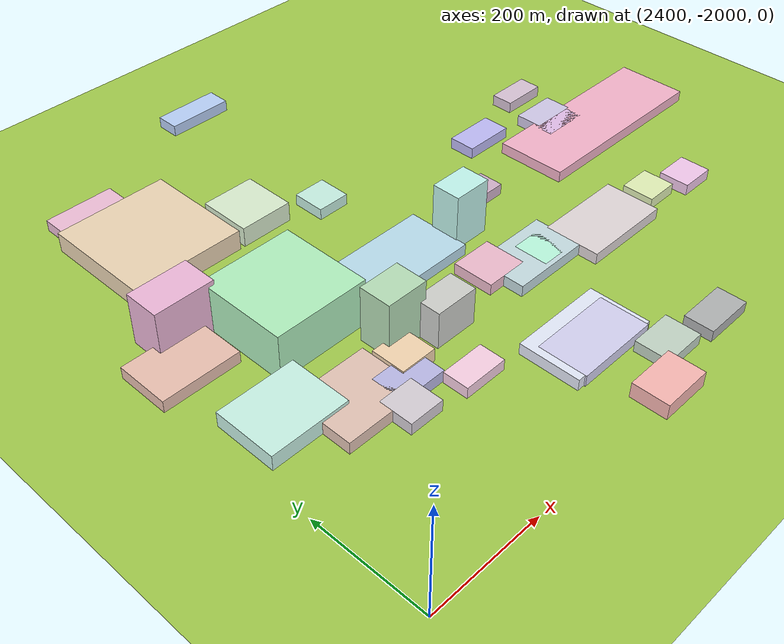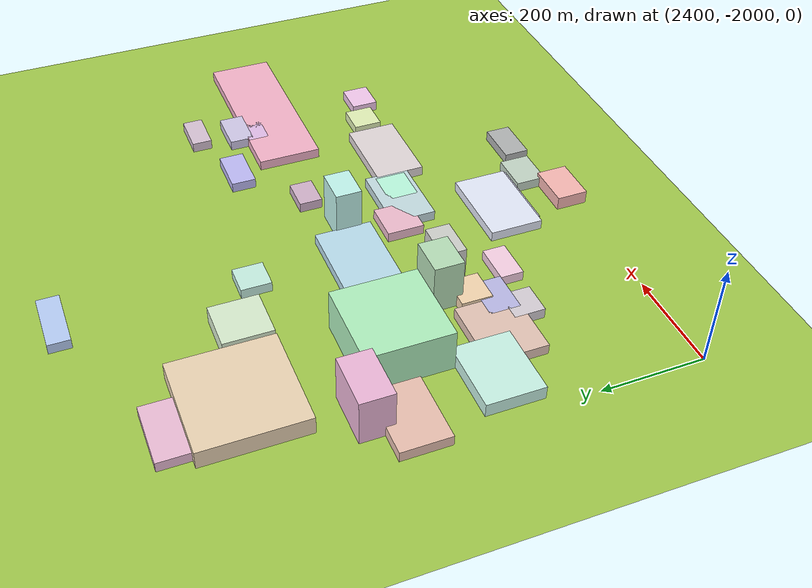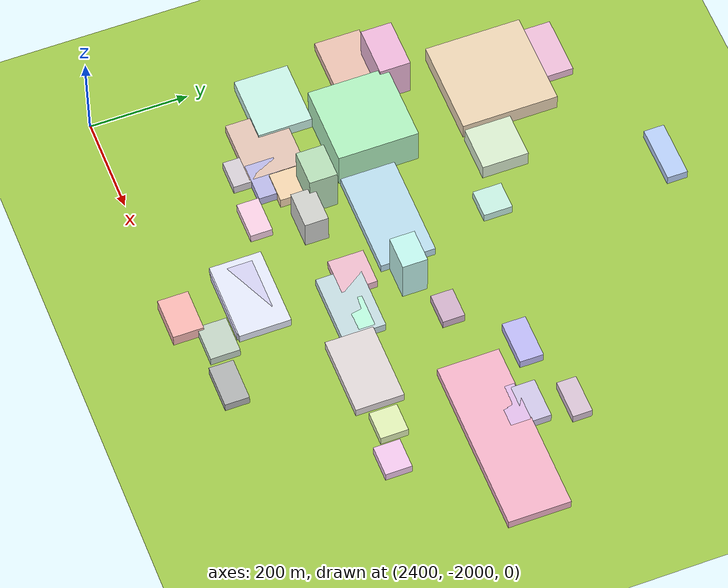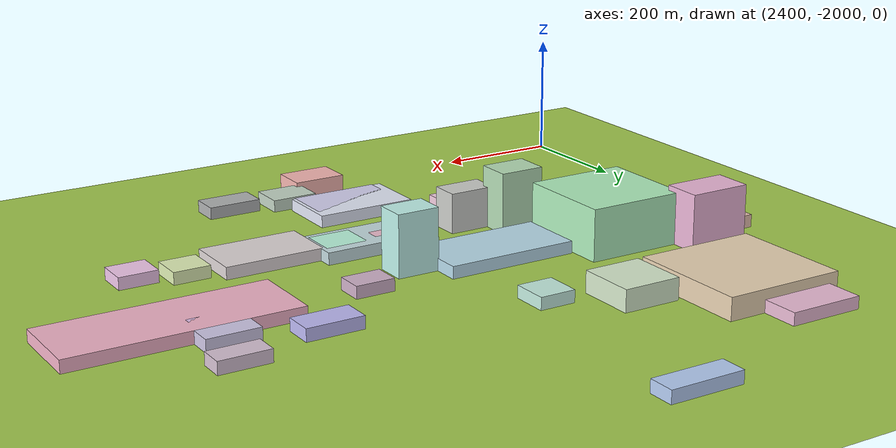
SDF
<sdf version="1.9">
 <world name="city_map">
  <model name="ground_plane">
   <static>1</static>
   <link name="link">
    <collision name="collision">
     <geometry><plane><normal>0 0 1</normal><size>11000 11000</size></plane></geometry>
    </collision>
    <visual name="visual">
     <geometry><plane><normal>0 0 1</normal><size>11000 11000</size></plane></geometry>
     <material>
      <ambient>0.551 0.712 0.210 1</ambient>
      <diffuse>0.651 0.812 0.310 1</diffuse>
      <specular>0.1 0.1 0.05 1</specular>
     </material>
    </visual>
   </link>
  </model>
  <model name="building_217675906">
   <static>1</static>
   <pose>3355.7046778592357 -1519.3740185500885 10.0 0 0 0</pose>
   <link name="link">
    <collision name="collision">
     <geometry><box><size>358.59774737228724 125.19690000002015 20</size></box></geometry>
    </collision>
    <visual name="visual">
     <cast_shadows>false</cast_shadows>
     <geometry><box><size>358.59774737228724 125.19690000002015 20</size></box></geometry>
     <material>
      <ambient>0.875 0.621 0.707 1</ambient>
      <diffuse>0.975 0.721 0.807 1</diffuse>
      <specular>0.292 0.216 0.242 1</specular>
      <emissive>0.01 0.01 0.01 1</emissive>
     </material>
    </visual>
   </link>
  </model>
  <model name="building_257993249">
   <static>1</static>
   <pose>2585.8370787539934 -1235.2685367506228 18.0 0 0 0</pose>
   <link name="link">
    <collision name="collision">
     <geometry><box><size>199.75691850875617 197.55780000014767 36.0</size></box></geometry>
    </collision>
    <visual name="visual">
     <cast_shadows>false</cast_shadows>
     <geometry><box><size>199.75691850875617 197.55780000014767 36.0</size></box></geometry>
     <material>
      <ambient>0.842 0.753 0.623 1</ambient>
      <diffuse>0.942 0.853 0.723 1</diffuse>
      <specular>0.283 0.256 0.217 1</specular>
      <emissive>0.01 0.01 0.01 1</emissive>
     </material>
    </visual>
   </link>
  </model>
  <model name="building_904435103">
   <static>1</static>
   <pose>2617.380323141981 -1515.2438643588926 42.0 0 0 0</pose>
   <link name="link">
    <collision name="collision">
     <geometry><box><size>167.0354452371219 164.70179999949863 84.0</size></box></geometry>
    </collision>
    <visual name="visual">
     <cast_shadows>false</cast_shadows>
     <geometry><box><size>167.0354452371219 164.70179999949863 84.0</size></box></geometry>
     <material>
      <ambient>0.607 0.861 0.663 1</ambient>
      <diffuse>0.707 0.961 0.763 1</diffuse>
      <specular>0.212 0.288 0.229 1</specular>
      <emissive>0.01 0.01 0.01 1</emissive>
     </material>
    </visual>
   </link>
  </model>
  <model name="building_614332747">
   <static>1</static>
   <pose>2813.0471255620364 -1540.1445767585428 10.0 0 0 0</pose>
   <link name="link">
    <collision name="collision">
     <geometry><box><size>216.1747394457642 111.54390000057646 20</size></box></geometry>
    </collision>
    <visual name="visual">
     <cast_shadows>false</cast_shadows>
     <geometry><box><size>216.1747394457642 111.54390000057646 20</size></box></geometry>
     <material>
      <ambient>0.644 0.786 0.849 1</ambient>
      <diffuse>0.744 0.886 0.949 1</diffuse>
      <specular>0.223 0.266 0.285 1</specular>
      <emissive>0.01 0.01 0.01 1</emissive>
     </material>
    </visual>
   </link>
  </model>
  <model name="building_30557907">
   <static>1</static>
   <pose>2889.8832503011313 -1850.268535347273 10.0 0 0 0</pose>
   <link name="link">
    <collision name="collision">
     <geometry><box><size>166.2780000005668 104.82366958232092 20</size></box></geometry>
    </collision>
    <visual name="visual">
     <cast_shadows>false</cast_shadows>
     <geometry><box><size>166.2780000005668 104.82366958232092 20</size></box></geometry>
     <material>
      <ambient>0.816 0.836 0.898 1</ambient>
      <diffuse>0.916 0.936 0.998 1</diffuse>
      <specular>0.275 0.281 0.299 1</specular>
      <emissive>0.01 0.01 0.01 1</emissive>
     </material>
    </visual>
   </link>
  </model>
  <model name="building_800659248">
   <static>1</static>
   <pose>3125.03098632622 -1708.2436433820794 10.0 0 0 0</pose>
   <link name="link">
    <collision name="collision">
     <geometry><box><size>162.11658942374282 97.45800000001736 20</size></box></geometry>
    </collision>
    <visual name="visual">
     <cast_shadows>false</cast_shadows>
     <geometry><box><size>162.11658942374282 97.45800000001736 20</size></box></geometry>
     <material>
      <ambient>0.798 0.764 0.767 1</ambient>
      <diffuse>0.898 0.864 0.867 1</diffuse>
      <specular>0.269 0.259 0.260 1</specular>
      <emissive>0.01 0.01 0.01 1</emissive>
     </material>
    </visual>
   </link>
  </model>
  <model name="building_826509959">
   <static>1</static>
   <pose>2576.458793326912 -1703.0531568688975 10.5 0 0 0</pose>
   <link name="link">
    <collision name="collision">
     <geometry><box><size>137.4291000002117 114.06352393202219 21.0</size></box></geometry>
    </collision>
    <visual name="visual">
     <cast_shadows>false</cast_shadows>
     <geometry><box><size>137.4291000002117 114.06352393202219 21.0</size></box></geometry>
     <material>
      <ambient>0.809 0.686 0.630 1</ambient>
      <diffuse>0.909 0.786 0.730 1</diffuse>
      <specular>0.273 0.236 0.219 1</specular>
      <emissive>0.01 0.01 0.01 1</emissive>
     </material>
    </visual>
   </link>
  </model>
  <model name="building_49849757">
   <static>1</static>
   <pose>2488.1501286558064 -1653.6425465614836 13.5 0 0 0</pose>
   <link name="link">
    <collision name="collision">
     <geometry><box><size>137.26259999984336 110.51516605935836 27.0</size></box></geometry>
    </collision>
    <visual name="visual">
     <cast_shadows>false</cast_shadows>
     <geometry><box><size>137.26259999984336 110.51516605935836 27.0</size></box></geometry>
     <material>
      <ambient>0.704 0.873 0.821 1</ambient>
      <diffuse>0.804 0.973 0.921 1</diffuse>
      <specular>0.241 0.292 0.276 1</specular>
      <emissive>0.01 0.01 0.01 1</emissive>
     </material>
    </visual>
   </link>
  </model>
  <model name="building_12570196">
   <static>1</static>
   <pose>2562.5044314679535 -1137.9622075862965 10.0 0 0 0</pose>
   <link name="link">
    <collision name="collision">
     <geometry><box><size>122.00010000051975 121.00870668629578 20</size></box></geometry>
    </collision>
    <visual name="visual">
     <cast_shadows>false</cast_shadows>
     <geometry><box><size>122.00010000051975 121.00870668629578 20</size></box></geometry>
     <material>
      <ambient>0.850 0.662 0.764 1</ambient>
      <diffuse>0.950 0.762 0.864 1</diffuse>
      <specular>0.285 0.229 0.259 1</specular>
      <emissive>0.01 0.01 0.01 1</emissive>
     </material>
    </visual>
   </link>
  </model>
  <model name="building_864503664">
   <static>1</static>
   <pose>2452.6600446692655 -1481.2108029880308 10.5 0 0 0</pose>
   <link name="link">
    <collision name="collision">
     <geometry><box><size>135.33416930124068 94.00589999989961 21.0</size></box></geometry>
    </collision>
    <visual name="visual">
     <cast_shadows>false</cast_shadows>
     <geometry><box><size>135.33416930124068 94.00589999989961 21.0</size></box></geometry>
     <material>
      <ambient>0.836 0.673 0.610 1</ambient>
      <diffuse>0.936 0.773 0.710 1</diffuse>
      <specular>0.281 0.232 0.213 1</specular>
      <emissive>0.01 0.01 0.01 1</emissive>
     </material>
    </visual>
   </link>
  </model>
  <model name="building_758923582">
   <static>1</static>
   <pose>2976.5947363539453 -1679.1652232963222 10.0 0 0 0</pose>
   <link name="link">
    <collision name="collision">
     <geometry><box><size>142.85700000054646 88.1860554054457 20</size></box></geometry>
    </collision>
    <visual name="visual">
     <cast_shadows>false</cast_shadows>
     <geometry><box><size>142.85700000054646 88.1860554054457 20</size></box></geometry>
     <material>
      <ambient>0.688 0.781 0.799 1</ambient>
      <diffuse>0.788 0.881 0.899 1</diffuse>
      <specular>0.236 0.264 0.270 1</specular>
      <emissive>0.01 0.01 0.01 1</emissive>
     </material>
    </visual>
   </link>
  </model>
  <model name="building_443871987">
   <static>1</static>
   <pose>2893.365343524529 -1862.9629780022149 10.0 0 0 0</pose>
   <link name="link">
    <collision name="collision">
     <geometry><box><size>146.34240000026466 84.60114720801052 20</size></box></geometry>
    </collision>
    <visual name="visual">
     <cast_shadows>false</cast_shadows>
     <geometry><box><size>146.34240000026466 84.60114720801052 20</size></box></geometry>
     <material>
      <ambient>0.754 0.745 0.866 1</ambient>
      <diffuse>0.854 0.845 0.966 1</diffuse>
      <specular>0.256 0.254 0.290 1</specular>
      <emissive>0.01 0.01 0.01 1</emissive>
     </material>
    </visual>
   </link>
  </model>
  <model name="building_136711785">
   <static>1</static>
   <pose>2741.8366960913754 -1286.98120047726 17.600495003316475 0 0 0</pose>
   <link name="link">
    <collision name="collision">
     <geometry><box><size>94.84950000029357 94.52264065624837 35.20099000663295</size></box></geometry>
    </collision>
    <visual name="visual">
     <cast_shadows>false</cast_shadows>
     <geometry><box><size>94.84950000029357 94.52264065624837 35.20099000663295</size></box></geometry>
     <material>
      <ambient>0.769 0.847 0.727 1</ambient>
      <diffuse>0.869 0.947 0.827 1</diffuse>
      <specular>0.261 0.284 0.248 1</specular>
      <emissive>0.01 0.01 0.01 1</emissive>
     </material>
    </visual>
   </link>
  </model>
  <model name="building_224563834">
   <static>1</static>
   <pose>2492.486084576235 -1420.2727829451796 46.15839086865897 0 0 0</pose>
   <link name="link">
    <collision name="collision">
     <geometry><box><size>103.99749534499618 63.14790000051573 92.31678173731794</size></box></geometry>
    </collision>
    <visual name="visual">
     <cast_shadows>false</cast_shadows>
     <geometry><box><size>103.99749534499618 63.14790000051573 92.31678173731794</size></box></geometry>
     <material>
      <ambient>0.853 0.639 0.773 1</ambient>
      <diffuse>0.953 0.739 0.873 1</diffuse>
      <specular>0.286 0.222 0.262 1</specular>
      <emissive>0.01 0.01 0.01 1</emissive>
     </material>
    </visual>
   </link>
  </model>
  <model name="building_379775864">
   <static>1</static>
   <pose>2912.6321742398586 -1650.8641269231532 10.0 0 0 0</pose>
   <link name="link">
    <collision name="collision">
     <geometry><box><size>75.83463928011258 72.53849999983686 20</size></box></geometry>
    </collision>
    <visual name="visual">
     <cast_shadows>false</cast_shadows>
     <geometry><box><size>75.83463928011258 72.53849999983686 20</size></box></geometry>
     <material>
      <ambient>0.852 0.654 0.722 1</ambient>
      <diffuse>0.952 0.754 0.822 1</diffuse>
      <specular>0.286 0.226 0.247 1</specular>
      <emissive>0.01 0.01 0.01 1</emissive>
     </material>
    </visual>
   </link>
  </model>
  <model name="building_217594853">
   <static>1</static>
   <pose>2890.476728507675 -1990.4876738723583 13.5 0 0 0</pose>
   <link name="link">
    <collision name="collision">
     <geometry><box><size>88.00222538420927 61.46069999972781 27.0</size></box></geometry>
    </collision>
    <visual name="visual">
     <cast_shadows>false</cast_shadows>
     <geometry><box><size>88.00222538420927 61.46069999972781 27.0</size></box></geometry>
     <material>
      <ambient>0.893 0.636 0.617 1</ambient>
      <diffuse>0.993 0.736 0.717 1</diffuse>
      <specular>0.298 0.221 0.215 1</specular>
      <emissive>0.01 0.01 0.01 1</emissive>
     </material>
    </visual>
   </link>
  </model>
  <model name="building_154428606">
   <static>1</static>
   <pose>2871.5450314646732 -986.1507394348175 10.0 0 0 0</pose>
   <link name="link">
    <collision name="collision">
     <geometry><box><size>118.16801533087163 41.88029999963305 20</size></box></geometry>
    </collision>
    <visual name="visual">
     <cast_shadows>false</cast_shadows>
     <geometry><box><size>118.16801533087163 41.88029999963305 20</size></box></geometry>
     <material>
      <ambient>0.637 0.731 0.890 1</ambient>
      <diffuse>0.737 0.831 0.990 1</diffuse>
      <specular>0.221 0.249 0.297 1</specular>
      <emissive>0.01 0.01 0.01 1</emissive>
     </material>
    </visual>
   </link>
  </model>
  <model name="building_288038578">
   <static>1</static>
   <pose>2651.6158615233776 -1728.505564380503 10.5 0 0 0</pose>
   <link name="link">
    <collision name="collision">
     <geometry><box><size>81.61830000025816 59.207844603459584 21.0</size></box></geometry>
    </collision>
    <visual name="visual">
     <cast_shadows>false</cast_shadows>
     <geometry><box><size>81.61830000025816 59.207844603459584 21.0</size></box></geometry>
     <material>
      <ambient>0.647 0.643 0.824 1</ambient>
      <diffuse>0.747 0.743 0.924 1</diffuse>
      <specular>0.224 0.223 0.277 1</specular>
      <emissive>0.01 0.01 0.01 1</emissive>
     </material>
    </visual>
   </link>
  </model>
  <model name="building_469462519">
   <static>1</static>
   <pose>2963.103060126349 -1941.0482914882505 10.0 0 0 0</pose>
   <link name="link">
    <collision name="collision">
     <geometry><box><size>76.75781431043549 59.57369999975981 20</size></box></geometry>
    </collision>
    <visual name="visual">
     <cast_shadows>false</cast_shadows>
     <geometry><box><size>76.75781431043549 59.57369999975981 20</size></box></geometry>
     <material>
      <ambient>0.682 0.752 0.691 1</ambient>
      <diffuse>0.782 0.852 0.791 1</diffuse>
      <specular>0.235 0.256 0.237 1</specular>
      <emissive>0.01 0.01 0.01 1</emissive>
     </material>
    </visual>
   </link>
  </model>
  <model name="building_912474257">
   <static>1</static>
   <pose>3172.3001187285654 -1406.7786114279731 10.0 0 0 0</pose>
   <link name="link">
    <collision name="collision">
     <geometry><box><size>91.36409999978667 47.873904989261256 20</size></box></geometry>
    </collision>
    <visual name="visual">
     <cast_shadows>false</cast_shadows>
     <geometry><box><size>91.36409999978667 47.873904989261256 20</size></box></geometry>
     <material>
      <ambient>0.661 0.647 0.882 1</ambient>
      <diffuse>0.761 0.747 0.982 1</diffuse>
      <specular>0.228 0.224 0.295 1</specular>
      <emissive>0.01 0.01 0.01 1</emissive>
     </material>
    </visual>
   </link>
  </model>
  <model name="building_36008742">
   <static>1</static>
   <pose>3062.627722559324 -1956.2251634763388 10.0 0 0 0</pose>
   <link name="link">
    <collision name="collision">
     <geometry><box><size>88.27863629729065 49.16190000033538 20</size></box></geometry>
    </collision>
    <visual name="visual">
     <cast_shadows>false</cast_shadows>
     <geometry><box><size>88.27863629729065 49.16190000033538 20</size></box></geometry>
     <material>
      <ambient>0.610 0.617 0.619 1</ambient>
      <diffuse>0.710 0.717 0.719 1</diffuse>
      <specular>0.213 0.215 0.216 1</specular>
      <emissive>0.01 0.01 0.01 1</emissive>
     </material>
    </visual>
   </link>
  </model>
  <model name="building_601005878">
   <static>1</static>
   <pose>2707.577989241116 -1645.1178202149708 50.0 0 0 0</pose>
   <link name="link">
    <collision name="collision">
     <geometry><box><size>74.48314700857635 56.909700000176144 100</size></box></geometry>
    </collision>
    <visual name="visual">
     <cast_shadows>false</cast_shadows>
     <geometry><box><size>74.48314700857635 56.909700000176144 100</size></box></geometry>
     <material>
      <ambient>0.632 0.791 0.636 1</ambient>
      <diffuse>0.732 0.891 0.736 1</diffuse>
      <specular>0.220 0.267 0.221 1</specular>
      <emissive>0.01 0.01 0.01 1</emissive>
     </material>
    </visual>
   </link>
  </model>
  <model name="building_449256573">
   <static>1</static>
   <pose>3005.6937668219675 -1684.6673846230835 10.0 0 0 0</pose>
   <link name="link">
    <collision name="collision">
     <geometry><box><size>69.31950000007703 60.639767413897424 20</size></box></geometry>
    </collision>
    <visual name="visual">
     <cast_shadows>false</cast_shadows>
     <geometry><box><size>69.31950000007703 60.639767413897424 20</size></box></geometry>
     <material>
      <ambient>0.649 0.898 0.791 1</ambient>
      <diffuse>0.749 0.998 0.891 1</diffuse>
      <specular>0.225 0.299 0.267 1</specular>
      <emissive>0.01 0.01 0.01 1</emissive>
     </material>
    </visual>
   </link>
  </model>
  <model name="building_869084119">
   <static>1</static>
   <pose>3305.7682412889467 -1444.0228062403855 10.0 0 0 0</pose>
   <link name="link">
    <collision name="collision">
     <geometry><box><size>83.73839999979538 48.063344576093044 20</size></box></geometry>
    </collision>
    <visual name="visual">
     <cast_shadows>false</cast_shadows>
     <geometry><box><size>83.73839999979538 48.063344576093044 20</size></box></geometry>
     <material>
      <ambient>0.735 0.703 0.830 1</ambient>
      <diffuse>0.835 0.803 0.930 1</diffuse>
      <specular>0.251 0.241 0.279 1</specular>
      <emissive>0.01 0.01 0.01 1</emissive>
     </material>
    </visual>
   </link>
  </model>
  <model name="building_108429873">
   <static>1</static>
   <pose>2680.3380804426465 -1692.1159444587224 12.0 0 0 0</pose>
   <link name="link">
    <collision name="collision">
     <geometry><box><size>64.20240000021948 59.80195641125216 24.0</size></box></geometry>
    </collision>
    <visual name="visual">
     <cast_shadows>false</cast_shadows>
     <geometry><box><size>64.20240000021948 59.80195641125216 24.0</size></box></geometry>
     <material>
      <ambient>0.877 0.757 0.607 1</ambient>
      <diffuse>0.977 0.857 0.707 1</diffuse>
      <specular>0.293 0.257 0.212 1</specular>
      <emissive>0.01 0.01 0.01 1</emissive>
     </material>
    </visual>
   </link>
  </model>
  <model name="building_121998916">
   <static>1</static>
   <pose>2772.8537940016477 -1684.8322002137702 33.1531893234004 0 0 0</pose>
   <link name="link">
    <collision name="collision">
     <geometry><box><size>77.30040000027572 48.092891034087906 66.3063786468008</size></box></geometry>
    </collision>
    <visual name="visual">
     <cast_shadows>false</cast_shadows>
     <geometry><box><size>77.30040000027572 48.092891034087906 66.3063786468008</size></box></geometry>
     <material>
      <ambient>0.728 0.732 0.716 1</ambient>
      <diffuse>0.828 0.832 0.816 1</diffuse>
      <specular>0.248 0.250 0.245 1</specular>
      <emissive>0.01 0.01 0.01 1</emissive>
     </material>
    </visual>
   </link>
  </model>
  <model name="building_835362499">
   <static>1</static>
   <pose>2618.517755679273 -1765.044513797662 10.5 0 0 0</pose>
   <link name="link">
    <collision name="collision">
     <geometry><box><size>61.471799999857524 59.24210434840975 21.0</size></box></geometry>
    </collision>
    <visual name="visual">
     <cast_shadows>false</cast_shadows>
     <geometry><box><size>61.471799999857524 59.24210434840975 21.0</size></box></geometry>
     <material>
      <ambient>0.758 0.729 0.759 1</ambient>
      <diffuse>0.858 0.829 0.859 1</diffuse>
      <specular>0.257 0.249 0.258 1</specular>
      <emissive>0.01 0.01 0.01 1</emissive>
     </material>
    </visual>
   </link>
  </model>
  <model name="building_593605914">
   <static>1</static>
   <pose>2954.0388243215853 -1552.7682097372367 50.0 0 0 0</pose>
   <link name="link">
    <collision name="collision">
     <geometry><box><size>69.06317706414777 50.74919999995586 100</size></box></geometry>
    </collision>
    <visual name="visual">
     <cast_shadows>false</cast_shadows>
     <geometry><box><size>69.06317706414777 50.74919999995586 100</size></box></geometry>
     <material>
      <ambient>0.676 0.881 0.848 1</ambient>
      <diffuse>0.776 0.981 0.948 1</diffuse>
      <specular>0.233 0.294 0.285 1</specular>
      <emissive>0.01 0.01 0.01 1</emissive>
     </material>
    </visual>
   </link>
  </model>
  <model name="building_312220920">
   <static>1</static>
   <pose>2728.088670270443 -1781.2954670021618 10.0 0 0 0</pose>
   <link name="link">
    <collision name="collision">
     <geometry><box><size>77.77769999954387 44.661351174036014 20</size></box></geometry>
    </collision>
    <visual name="visual">
     <cast_shadows>false</cast_shadows>
     <geometry><box><size>77.77769999954387 44.661351174036014 20</size></box></geometry>
     <material>
      <ambient>0.893 0.740 0.815 1</ambient>
      <diffuse>0.993 0.840 0.915 1</diffuse>
      <specular>0.298 0.252 0.275 1</specular>
      <emissive>0.01 0.01 0.01 1</emissive>
     </material>
    </visual>
   </link>
  </model>
  <model name="building_810725071">
   <static>1</static>
   <pose>2854.702558128327 -1340.259137630072 10.0 0 0 0</pose>
   <link name="link">
    <collision name="collision">
     <geometry><box><size>58.622146211487355 58.59690000017537 20</size></box></geometry>
    </collision>
    <visual name="visual">
     <cast_shadows>false</cast_shadows>
     <geometry><box><size>58.622146211487355 58.59690000017537 20</size></box></geometry>
     <material>
      <ambient>0.695 0.859 0.805 1</ambient>
      <diffuse>0.795 0.959 0.905 1</diffuse>
      <specular>0.239 0.288 0.272 1</specular>
      <emissive>0.01 0.01 0.01 1</emissive>
     </material>
    </visual>
   </link>
  </model>
  <model name="building_986429908">
   <static>1</static>
   <pose>3299.7148669102367 -1478.67708420291 10.0 0 0 0</pose>
   <link name="link">
    <collision name="collision">
     <geometry><box><size>84.12855122737902 40.770300000069426 20</size></box></geometry>
    </collision>
    <visual name="visual">
     <cast_shadows>false</cast_shadows>
     <geometry><box><size>84.12855122737902 40.770300000069426 20</size></box></geometry>
     <material>
      <ambient>0.805 0.661 0.834 1</ambient>
      <diffuse>0.905 0.761 0.934 1</diffuse>
      <specular>0.272 0.228 0.280 1</specular>
      <emissive>0.01 0.01 0.01 1</emissive>
     </material>
    </visual>
   </link>
  </model>
  <model name="building_658830169">
   <static>1</static>
   <pose>3325.671926301188 -1729.4689016295695 10.0 0 0 0</pose>
   <link name="link">
    <collision name="collision">
     <geometry><box><size>63.28110000049492 53.255313217745005 20</size></box></geometry>
    </collision>
    <visual name="visual">
     <cast_shadows>false</cast_shadows>
     <geometry><box><size>63.28110000049492 53.255313217745005 20</size></box></geometry>
     <material>
      <ambient>0.872 0.705 0.849 1</ambient>
      <diffuse>0.972 0.805 0.949 1</diffuse>
      <specular>0.292 0.242 0.285 1</specular>
      <emissive>0.01 0.01 0.01 1</emissive>
     </material>
    </visual>
   </link>
  </model>
  <model name="building_425517880">
   <static>1</static>
   <pose>3250.7716965980417 -1708.2505930665573 10.0 0 0 0</pose>
   <link name="link">
    <collision name="collision">
     <geometry><box><size>59.91016410518177 55.95509999927373 20</size></box></geometry>
    </collision>
    <visual name="visual">
     <cast_shadows>false</cast_shadows>
     <geometry><box><size>59.91016410518177 55.95509999927373 20</size></box></geometry>
     <material>
      <ambient>0.803 0.864 0.632 1</ambient>
      <diffuse>0.903 0.964 0.732 1</diffuse>
      <specular>0.271 0.289 0.220 1</specular>
      <emissive>0.01 0.01 0.01 1</emissive>
     </material>
    </visual>
   </link>
  </model>
  <model name="building_672812761">
   <static>1</static>
   <pose>3325.5525057288664 -1364.268346190626 10.0 0 0 0</pose>
   <link name="link">
    <collision name="collision">
     <geometry><box><size>80.46478222799473 39.338399999898854 20</size></box></geometry>
    </collision>
    <visual name="visual">
     <cast_shadows>false</cast_shadows>
     <geometry><box><size>80.46478222799473 39.338399999898854 20</size></box></geometry>
     <material>
      <ambient>0.764 0.682 0.753 1</ambient>
      <diffuse>0.864 0.782 0.853 1</diffuse>
      <specular>0.259 0.235 0.256 1</specular>
      <emissive>0.01 0.01 0.01 1</emissive>
     </material>
    </visual>
   </link>
  </model>
  <model name="building_812634061">
   <static>1</static>
   <pose>3050.4790834377804 -1510.3963880365282 10.0 0 0 0</pose>
   <link name="link">
    <collision name="collision">
     <geometry><box><size>63.5967628535893 45.02160000006228 20</size></box></geometry>
    </collision>
    <visual name="visual">
     <cast_shadows>false</cast_shadows>
     <geometry><box><size>63.5967628535893 45.02160000006228 20</size></box></geometry>
     <material>
      <ambient>0.737 0.616 0.710 1</ambient>
      <diffuse>0.837 0.716 0.810 1</diffuse>
      <specular>0.251 0.215 0.243 1</specular>
      <emissive>0.01 0.01 0.01 1</emissive>
     </material>
    </visual>
   </link>
  </model>
 </world>
</sdf>
